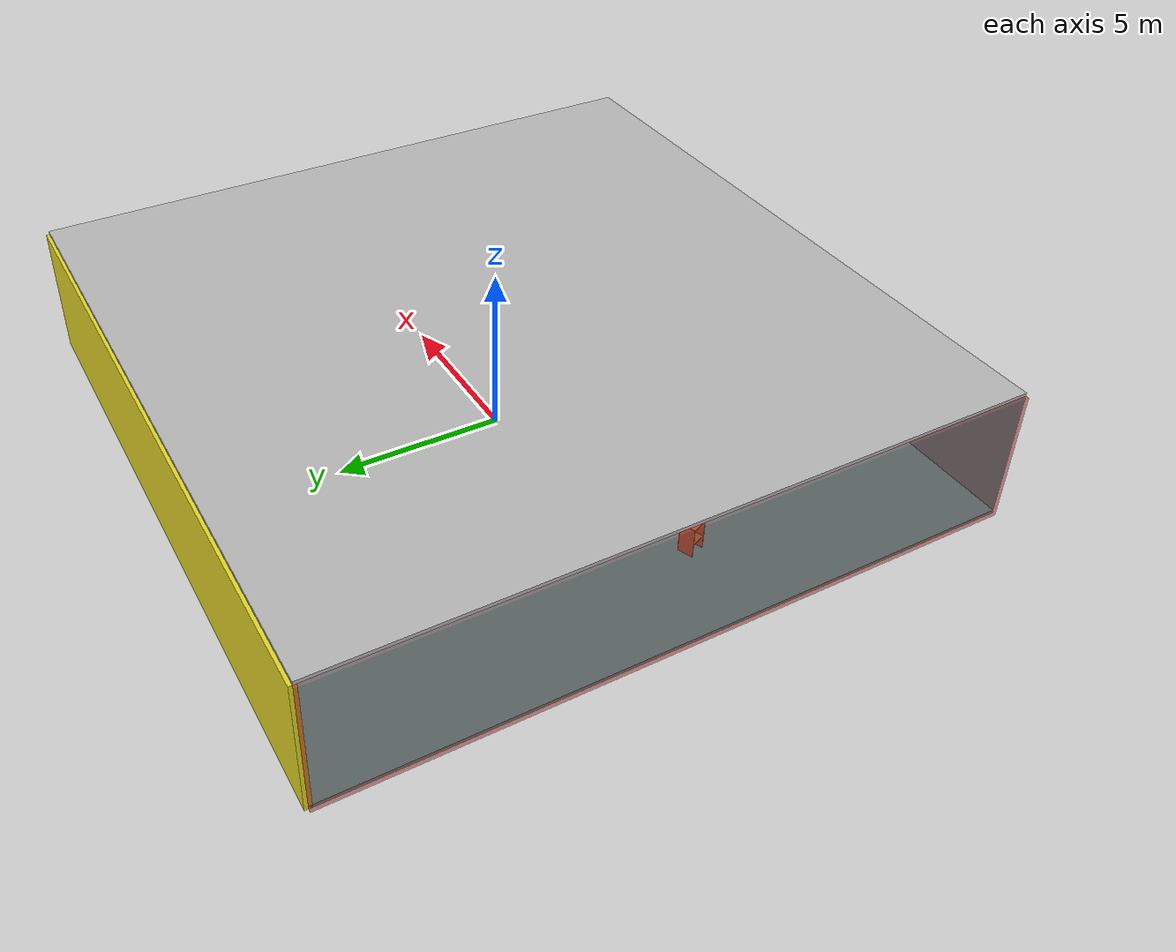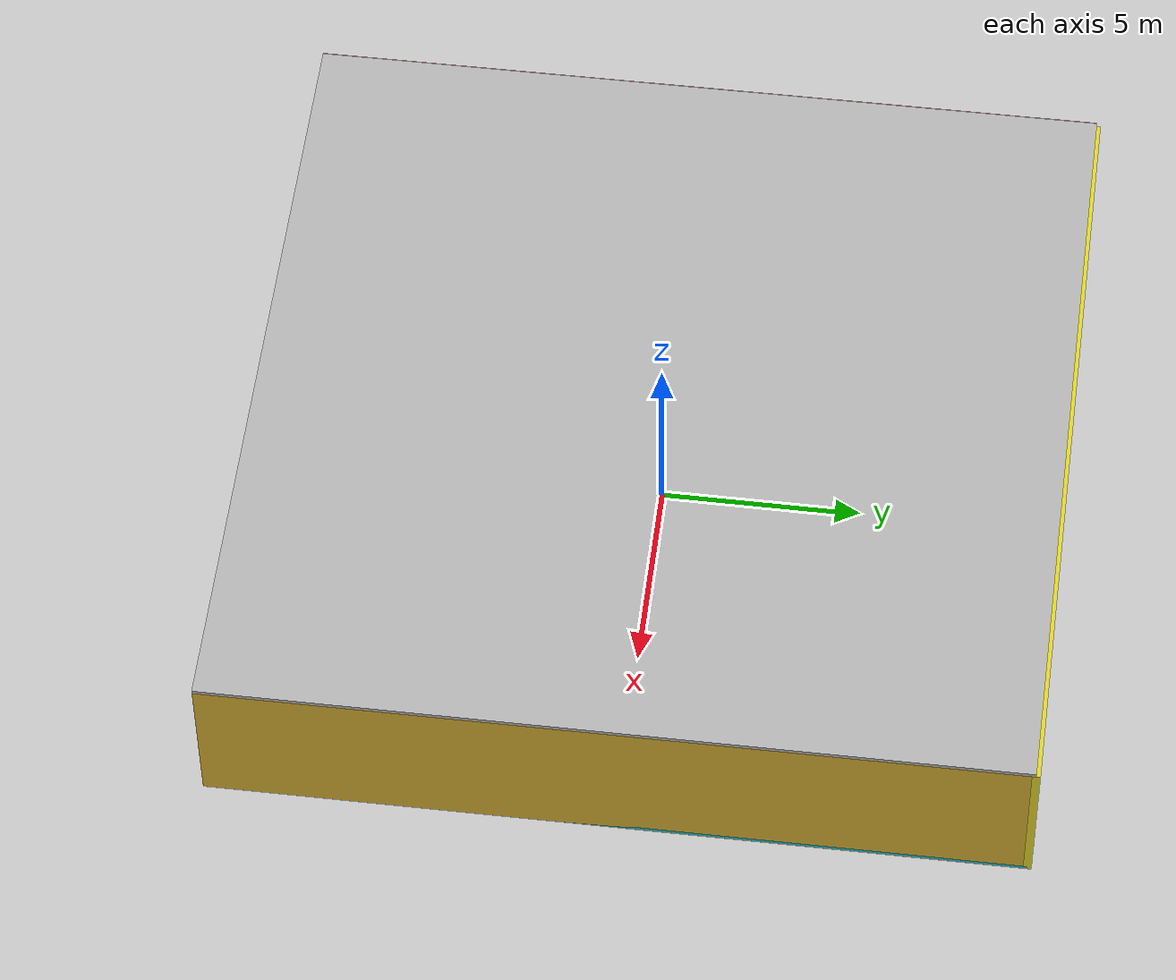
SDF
<sdf version="1.4">
 <world name="default">
  <physics type="ode">
   <max_step_size>0.001</max_step_size>
   <real_time_factor>1</real_time_factor>
   <real_time_update_rate>1000</real_time_update_rate>
   <gravity>0 0 -9.8</gravity>
  </physics>
  <scene><ambient>0.4 0.4 0.4 1</ambient><background>0.7 0.7 0.7 1</background><shadows>1</shadows></scene>
  <model name="Surrounding">
   <static>1</static>
   <link name="Ceiling">
    <collision name="Ceiling_Collision"><geometry><box><size>20 20 0.1</size></box></geometry></collision>
    <visual name="Ceiling_Visual">
     <geometry><box><size>20 20 0.1</size></box></geometry>
     <material>
      <script><uri>file://media/materials/scripts/gazebo.material</uri><name>Gazebo/CloudySky</name></script>
     </material>
    </visual>
    <pose>0 0 4.05 0 0 0</pose>
   </link>
   <link name="Wall_South">
    <collision name="Wall_South_Collision">
     <geometry><box><size>20 0 4</size></box></geometry>
     <pose>0 0 2 0 -0 0</pose>
    </collision>
    <visual name="Wall_South_Visual">
     <pose>0 0 2 0 -0 0</pose>
     <geometry><box><size>20 0 4</size></box></geometry>
     <material>
      <script><uri>file://media/materials/scripts/gazebo.material</uri><name>Gazebo/Turquoise</name></script>
     </material>
    </visual>
    <velocity_decay><linear>0</linear><angular>0</angular></velocity_decay>
    <pose>0 -10 0 0 -0 0</pose>
   </link>
   <link name="Wall_East">
    <collision name="Wall_21_Collision">
     <geometry><box><size>20 0 4</size></box></geometry>
     <pose>0 0 2 0 -0 0</pose>
    </collision>
    <visual name="Wall_21_Visual">
     <pose>0 0 2 0 -0 0</pose>
     <geometry><box><size>20 0 4</size></box></geometry>
     <material>
      <script><uri>file://media/materials/scripts/gazebo.material</uri><name>Gazebo/Gold</name></script>
     </material>
    </visual>
    <velocity_decay><linear>0</linear><angular>0</angular></velocity_decay>
    <pose>10 0 0 0 -0 1.5708</pose>
   </link>
   <link name="Wall_North">
    <collision name="Wall_22_Collision">
     <geometry><box><size>20 0.2 4</size></box></geometry>
     <pose>0 0 2 0 -0 0</pose>
    </collision>
    <visual name="Wall_22_Visual">
     <pose>0 0 2 0 -0 0</pose>
     <geometry><box><size>20 0.2 4</size></box></geometry>
     <material>
      <script><uri>file://media/materials/scripts/gazebo.material</uri><name>Gazebo/YellowGlow</name></script>
     </material>
    </visual>
    <velocity_decay><linear>0</linear><angular>0</angular></velocity_decay>
    <pose>0 10 0 0 -0 0</pose>
   </link>
   <link name="Wall_West">
    <collision name="Wall_23_Collision">
     <geometry><box><size>20 0.2 4</size></box></geometry>
     <pose>0 0 2 0 -0 0</pose>
    </collision>
    <visual name="Wall_23_Visual">
     <pose>0 0 2 0 -0 0</pose>
     <geometry><box><size>20 0.2 4</size></box></geometry>
     <material>
      <script><uri>file://media/materials/scripts/gazebo.material</uri><name>Gazebo/RedTransparent</name></script>
     </material>
    </visual>
    <velocity_decay><linear>0</linear><angular>0</angular></velocity_decay>
    <pose>-10 0 0 0 0 -1.5708</pose>
   </link>
   <link name="Ground_link">
    <collision name="collision">
     <pose>0 0 .05 0 -0 0</pose>
     <geometry><box><size>20 20 0.1</size></box></geometry>
    </collision>
    <visual name="visual">
     <pose>0 0 .05 0 -0 0</pose>
     <geometry><box><size>20 20 0.1</size></box></geometry>
     <material>
      <script>
       <uri>file://media/materials/scripts/gazebo.material</uri>
       <name>Gazebo/TurquoiseGlowOutline</name>
      </script>
     </material>
    </visual>
   </link>
   <static>1</static>
  </model>
  <spherical_coordinates>
   <surface_model>EARTH_WGS84</surface_model>
   <latitude_deg>0</latitude_deg>
   <longitude_deg>0</longitude_deg>
   <elevation>0</elevation>
   <heading_deg>0</heading_deg>
  </spherical_coordinates>
  <light name="lightball_0" type="diffuse">
   <diffuse>0.8 0.8 0.8 1</diffuse>
   <specular>0.2 0.2 0.2 1</specular>
   <attenuation>
    <range>100</range>
    <constant>0.7</constant>
    <linear>0.01</linear>
    <quadratic>0.001</quadratic>
   </attenuation>
   <direction>-0.5 0.1 -0.9</direction>
   <pose>0.608055234996 0.213501353682 3.63186859793 0 0 0</pose>
  </light>
  <light name="lightball_1" type="diffuse">
   <diffuse>0.8 0.8 0.8 1</diffuse>
   <specular>0.2 0.2 0.2 1</specular>
   <attenuation>
    <range>100</range>
    <constant>0.7</constant>
    <linear>0.01</linear>
    <quadratic>0.001</quadratic>
   </attenuation>
   <direction>-0.5 0.1 -0.9</direction>
   <pose>1.18782372521 -5.65191236101 2.96102871857 0 0 0</pose>
  </light>
  <light name="lightball_2" type="diffuse">
   <diffuse>0.8 0.8 0.8 1</diffuse>
   <specular>0.2 0.2 0.2 1</specular>
   <attenuation>
    <range>100</range>
    <constant>0.7</constant>
    <linear>0.01</linear>
    <quadratic>0.001</quadratic>
   </attenuation>
   <direction>-0.5 0.1 -0.9</direction>
   <pose>-4.76441795785 -6.41944401623 0.645766470914 0 0 0</pose>
  </light>
  <light name="lightball_3" type="diffuse">
   <diffuse>0.8 0.8 0.8 1</diffuse>
   <specular>0.2 0.2 0.2 1</specular>
   <attenuation>
    <range>100</range>
    <constant>0.7</constant>
    <linear>0.01</linear>
    <quadratic>0.001</quadratic>
   </attenuation>
   <direction>-0.5 0.1 -0.9</direction>
   <pose>5.53155049387 -0.466634884976 3.05770736162 0 0 0</pose>
  </light>
  <light name="lightball_4" type="diffuse">
   <diffuse>0.8 0.8 0.8 1</diffuse>
   <specular>0.2 0.2 0.2 1</specular>
   <attenuation>
    <range>100</range>
    <constant>0.7</constant>
    <linear>0.01</linear>
    <quadratic>0.001</quadratic>
   </attenuation>
   <direction>-0.5 0.1 -0.9</direction>
   <pose>-7.08322528234 -4.39845423485 1.8326197551 0 0 0</pose>
  </light>
  <light name="lightball_5" type="diffuse">
   <diffuse>0.8 0.8 0.8 1</diffuse>
   <specular>0.2 0.2 0.2 1</specular>
   <attenuation>
    <range>100</range>
    <constant>0.7</constant>
    <linear>0.01</linear>
    <quadratic>0.001</quadratic>
   </attenuation>
   <direction>-0.5 0.1 -0.9</direction>
   <pose>-9.04029881606 -8.50146425887 2.82894921892 0 0 0</pose>
  </light>
  <light name="lightball_6" type="diffuse">
   <diffuse>0.8 0.8 0.8 1</diffuse>
   <specular>0.2 0.2 0.2 1</specular>
   <attenuation>
    <range>100</range>
    <constant>0.7</constant>
    <linear>0.01</linear>
    <quadratic>0.001</quadratic>
   </attenuation>
   <direction>-0.5 0.1 -0.9</direction>
   <pose>-2.98833402889 -1.48262251776 1.78708495648 0 0 0</pose>
  </light>
  <include><uri>model://cabinet</uri><pose>-7.31692037567 -1.86946942874 0 0 0 0.373375310421</pose></include>
  <include><uri>model://table</uri><pose>-4.06174678382 5.17905425235 0 0 0 0.140232496254</pose></include>
  <include>
   <uri>model://robocup_3Dsim_goal</uri>
   <pose>4.47073934736 -6.88494019072 0 0 0 0.74923110192</pose>
  </include>
  <include><uri>model://cabinet</uri><pose>4.89599795375 -1.70305687998 0 0 0 1.36985167282</pose></include>
 </world>
</sdf>

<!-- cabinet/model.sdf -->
<sdf version="1.5">
  <model name="cabinet">
    <static>true</static>
    <link name="cabinet_bottom_plate">
      <inertial>
        <pose>0 0 -1 0 0 0</pose>
        <inertia>
          <ixx>2.050000</ixx>
          <ixy>0</ixy>
          <ixz>0</ixz>
          <iyy>2.050000</iyy>
          <iyz>0</iyz>
          <izz>2.050000</izz>
        </inertia>
        <mass>25.000000</mass>
      </inertial>
      <collision name="cabinet_bottom_plate_geom">
        <pose>0 0 0.010000 0 0 0</pose>
        <geometry>
          <box>
            <size>0.450000 0.450000 0.020000</size>
          </box>
        </geometry>
      </collision>
      <visual name="cabinet_bottom_plate_geom_visual">
        <pose>0 0 0.010000 0 0 0</pose>
        <geometry>
          <box>
            <size>0.450000 0.450000 0.020000</size>
          </box>
        </geometry>
        <material>
          <script>
            <uri>model://media/materials/scripts/gazebo.material</uri>
            <name>Gazebo/Wood</name>
          </script>
        </material>
      </visual>
      <collision name="cabinet_bottom_plate_geom_cabinet_back_plate">
        <pose>0.235000 0 0.510000 0 0 0</pose>
        <geometry>
          <box>
            <size>0.020000 0.450000 1.020000</size>
          </box>
        </geometry>
      </collision>
      <visual name="cabinet_bottom_plate_geom_cabinet_back_plate_visual">
        <pose>0.235000 0 0.510000 0 0 0</pose>
        <geometry>
          <box>
            <size>0.020000 0.450000 1.020000</size>
          </box>
        </geometry>
        <material>
          <script>
            <uri>model://media/materials/scripts/gazebo.material</uri>
            <name>Gazebo/Wood</name>
          </script>
        </material>
      </visual>
      <collision name="cabinet_bottom_plate_geom_cabinet_left_plate">
        <pose>0 0.235000 0.510000 0 0 0</pose>
        <geometry>
          <box>
            <size>0.450000 0.020000 1.020000</size>
          </box>
        </geometry>
      </collision>
      <visual name="cabinet_bottom_plate_geom_cabinet_left_plate_visual">
        <pose>0 0.235000 0.510000 0 0 0</pose>
        <geometry>
          <box>
            <size>0.450000 0.020000 1.020000</size>
          </box>
        </geometry>
        <material>
          <script>
            <uri>model://media/materials/scripts/gazebo.material</uri>
            <name>Gazebo/Wood</name>
          </script>
        </material>
      </visual>
      <collision name="cabinet_bottom_plate_geom_cabinet_middle_plate">
        <pose>0 0 0.510000 0 0 0</pose>
        <geometry>
          <box>
            <size>0.450000 0.450000 0.020000</size>
          </box>
        </geometry>
      </collision>
      <visual name="cabinet_bottom_plate_geom_cabinet_middle_plate_visual">
        <pose>0 0 0.510000 0 0 0</pose>
        <geometry>
          <box>
            <size>0.450000 0.450000 0.020000</size>
          </box>
        </geometry>
        <material>
          <script>
            <uri>model://media/materials/scripts/gazebo.material</uri>
            <name>Gazebo/Wood</name>
          </script>
        </material>
      </visual>
      <collision name="cabinet_bottom_plate_geom_cabinet_right_plate">
        <pose>0 -0.235000 0.510000 0 0 0</pose>
        <geometry>
          <box>
            <size>0.450000 0.020000 1.020000</size>
          </box>
        </geometry>
      </collision>
      <visual name="cabinet_bottom_plate_geom_cabinet_right_plate_visual">
        <pose>0 -0.235000 0.510000 0 0 0</pose>
        <geometry>
          <box>
            <size>0.450000 0.020000 1.020000</size>
          </box>
        </geometry>
        <material>
          <script>
            <uri>model://media/materials/scripts/gazebo.material</uri>
            <name>Gazebo/Wood</name>
          </script>
        </material>
      </visual>
      <collision name="cabinet_bottom_plate_geom_cabinet_top_plate">
        <pose>0 0 1.010000 0 0 0</pose>
        <geometry>
          <box>
            <size>0.450000 0.450000 0.020000</size>
          </box>
        </geometry>
      </collision>
      <visual name="cabinet_bottom_plate_geom_cabinet_top_plate_visual">
        <pose>0 0 1.010000 0 0 0</pose>
        <geometry>
          <box>
            <size>0.450000 0.450000 0.020000</size>
          </box>
        </geometry>
        <material>
          <script>
            <uri>model://media/materials/scripts/gazebo.material</uri>
            <name>Gazebo/Wood</name>
          </script>
        </material>
      </visual>
    </link>
  </model>
</sdf>

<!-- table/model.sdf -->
<sdf version="1.5">
  <model name="table">
    <static>true</static>
    <link name="link">
      <collision name="surface">
        <pose>0 0 1.0 0 0 0</pose>
        <geometry>
          <box>
            <size>1.5 0.8 0.03</size>
          </box>
        </geometry>
        <surface>
          <friction>
            <ode>
              <mu>0.6</mu>
              <mu2>0.6</mu2>
            </ode>
          </friction>
        </surface>
      </collision>
      <visual name="visual1">
        <pose>0 0 1.0 0 0 0</pose>
        <geometry>
          <box>
            <size>1.5 0.8 0.03</size>
          </box>
        </geometry>
        <material>
          <script>
            <uri>model://media/materials/scripts/gazebo.material</uri>
            <name>Gazebo/Wood</name>
          </script>
        </material>
      </visual>
      <collision name="front_left_leg">
        <pose>0.68 0.38 0.5 0 0 0</pose>
        <geometry>
          <cylinder>
            <radius>0.02</radius>
            <length>1.0</length>
          </cylinder>
        </geometry>
      </collision>
      <visual name="front_left_leg">
        <pose>0.68 0.38 0.5 0 0 0</pose>
        <geometry>
          <cylinder>
            <radius>0.02</radius>
            <length>1.0</length>
          </cylinder>
        </geometry>
        <material>
          <script>
            <uri>model://media/materials/scripts/gazebo.material</uri>
            <name>Gazebo/Grey</name>
          </script>
        </material>
      </visual>
      <collision name="front_right_leg">
        <pose>0.68 -0.38 0.5 0 0 0</pose>
        <geometry>
          <cylinder>
            <radius>0.02</radius>
            <length>1.0</length>
          </cylinder>
        </geometry>
      </collision>
      <visual name="front_right_leg">
        <pose>0.68 -0.38 0.5 0 0 0</pose>
        <geometry>
          <cylinder>
            <radius>0.02</radius>
            <length>1.0</length>
          </cylinder>
        </geometry>
        <material>
          <script>
            <uri>model://media/materials/scripts/gazebo.material</uri>
            <name>Gazebo/Grey</name>
          </script>
        </material>
      </visual>
      <collision name="back_right_leg">
        <pose>-0.68 -0.38 0.5 0 0 0</pose>
        <geometry>
          <cylinder>
            <radius>0.02</radius>
            <length>1.0</length>
          </cylinder>
        </geometry>
      </collision>
      <visual name="back_right_leg">
        <pose>-0.68 -0.38 0.5 0 0 0</pose>
        <geometry>
          <cylinder>
            <radius>0.02</radius>
            <length>1.0</length>
          </cylinder>
        </geometry>
        <material>
          <script>
            <uri>model://media/materials/scripts/gazebo.material</uri>
            <name>Gazebo/Grey</name>
          </script>
        </material>
      </visual>
      <collision name="back_left_leg">
        <pose>-0.68 0.38 0.5 0 0 0</pose>
        <geometry>
          <cylinder>
            <radius>0.02</radius>
            <length>1.0</length>
          </cylinder>
        </geometry>
      </collision>
      <visual name="back_left_leg">
        <pose>-0.68 0.38 0.5 0 0 0</pose>
        <geometry>
          <cylinder>
            <radius>0.02</radius>
            <length>1.0</length>
          </cylinder>
        </geometry>
        <material>
          <script>
            <uri>model://media/materials/scripts/gazebo.material</uri>
            <name>Gazebo/Grey</name>
          </script>
        </material>
      </visual>
    </link>
  </model>
</sdf>

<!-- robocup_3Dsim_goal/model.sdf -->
<sdf version="1.5">
  <model name="robocup_3d_goal">
    <static>true</static>
    <link name="left_post">
      <pose>0 1.05 0.45 0 0 0</pose>
      <collision name="collision">
        <geometry>
          <cylinder>
            <radius>0.05</radius>
            <length>0.9</length>
          </cylinder>
        </geometry>
      </collision>
      <visual name="visual">
        <geometry>
          <cylinder>
            <radius>0.05</radius>
            <length>0.9</length>
          </cylinder>
        </geometry>
        <material>
          <script>
            <uri>file://media/materials/scripts/gazebo.material</uri>
            <name>Gazebo/ZincYellow</name>
          </script>
        </material>
      </visual>
    </link>
    <link name="left_support_horiz_lower">
      <pose>0.30 1.05 0.01 0 0 0</pose>
      <collision name="collision">
        <geometry>
          <box>
            <size>0.50 0.02 0.02</size>
          </box>
        </geometry>
      </collision>
      <visual name="visual">
        <geometry>
          <box>
            <size>0.50 0.02 0.02</size>
          </box>
        </geometry>
        <material>
          <script>
            <uri>file://media/materials/scripts/gazebo.material</uri>
            <name>Gazebo/White</name>
          </script>
        </material>
      </visual>
    </link>
    <link name="left_support_horiz_upper">
      <pose>0.30 1.05 0.79 0 0 0</pose>
      <collision name="collision">
        <geometry>
          <box>
            <size>0.50 0.02 0.02</size>
          </box>
        </geometry>
      </collision>
      <visual name="visual">
        <geometry>
          <box>
            <size>0.50 0.02 0.02</size>
          </box>
        </geometry>
        <material>
          <script>
            <uri>file://media/materials/scripts/gazebo.material</uri>
            <name>Gazebo/White</name>
          </script>
        </material>
      </visual>
    </link>
    <link name="left_support_vertical">
      <pose>0.56 1.05 0.4 0 1.5708 0</pose>
      <collision name="collision">
        <geometry>
          <box>
            <size>0.80 0.02 0.02</size>
          </box>
        </geometry>
      </collision>
      <visual name="visual">
        <geometry>
          <box>
            <size>0.80 0.02 0.02</size>
          </box>
        </geometry>
        <material>
          <script>
            <uri>file://media/materials/scripts/gazebo.material</uri>
            <name>Gazebo/White</name>
          </script>
        </material>
      </visual>
    </link>
    <link name="right_support_horiz_lower">
      <pose>0.30 -1.05 0.01 0 0 0</pose>
      <collision name="collision">
        <geometry>
          <box>
            <size>0.50 0.02 0.02</size>
          </box>
        </geometry>
      </collision>
      <visual name="visual">
        <geometry>
          <box>
            <size>0.50 0.02 0.02</size>
          </box>
        </geometry>
        <material>
          <script>
            <uri>file://media/materials/scripts/gazebo.material</uri>
            <name>Gazebo/White</name>
          </script>
        </material>
      </visual>
    </link>
    <link name="right_support_horiz_upper">
      <pose>0.30 -1.05 0.79 0 0 0</pose>
      <collision name="collision">
        <geometry>
          <box>
            <size>0.50 0.02 0.02</size>
          </box>
        </geometry>
      </collision>
      <visual name="visual">
        <geometry>
          <box>
            <size>0.50 0.02 0.02</size>
          </box>
        </geometry>
        <material>
          <script>
            <uri>file://media/materials/scripts/gazebo.material</uri>
            <name>Gazebo/White</name>
          </script>
        </material>
      </visual>
    </link>
    <link name="right_support_vertical">
      <pose>0.56 -1.05 0.4 0 1.5708 0</pose>
      <collision name="collision">
        <geometry>
          <box>
            <size>0.80 0.02 0.02</size>
          </box>
        </geometry>
      </collision>
      <visual name="visual">
        <geometry>
          <box>
            <size>0.80 0.02 0.02</size>
          </box>
        </geometry>
        <material>
          <script>
            <uri>file://media/materials/scripts/gazebo.material</uri>
            <name>Gazebo/White</name>
          </script>
        </material>
      </visual>
    </link>
    <link name="center_support_horiz_lower">
      <pose>0.56 0 0.01 0 1.5708 0</pose>
      <collision name="collision">
        <geometry>
          <box>
            <size>0.02 2.08 0.02</size>
          </box>
        </geometry>
      </collision>
      <visual name="visual">
        <geometry>
          <box>
            <size>0.02 2.08 0.02</size>
          </box>
        </geometry>
        <material>
          <script>
            <uri>file://media/materials/scripts/gazebo.material</uri>
            <name>Gazebo/White</name>
          </script>
        </material>
      </visual>
    </link>
    <link name="center_support_horiz_upper">
      <pose>0.56 0 0.79 0 1.5708 0</pose>
      <collision name="collision">
        <geometry>
          <box>
            <size>0.02 2.08 0.02</size>
          </box>
        </geometry>
      </collision>
      <visual name="visual">
        <geometry>
          <box>
            <size>0.02 2.08 0.02</size>
          </box>
        </geometry>
        <material>
          <script>
            <uri>file://media/materials/scripts/gazebo.material</uri>
            <name>Gazebo/White</name>
          </script>
        </material>
      </visual>
    </link>
    <link name="right_post">
      <pose>0 -1.05 0.45 0 0 0</pose>
      <collision name="collision">
        <geometry>
          <cylinder>
            <radius>0.05</radius>
            <length>0.9</length>
          </cylinder>
        </geometry>
      </collision>
      <visual name="visual">
        <geometry>
          <cylinder>
            <radius>0.05</radius>
            <length>0.9</length>
          </cylinder>
        </geometry>
        <material>
          <script>
            <uri>file://media/materials/scripts/gazebo.material</uri>
            <name>Gazebo/ZincYellow</name>
          </script>
        </material>
      </visual>
    </link>
    <link name="crossbar">
      <pose>0 0 0.85 1.57 1.57 0</pose>
      <collision name="collision">
        <geometry>
          <cylinder>
            <radius>0.05</radius>
            <length>2.0</length>
          </cylinder>
        </geometry>
      </collision>
      <visual name="visual">
        <geometry>
          <cylinder>
            <radius>0.05</radius>
            <length>2.0</length>
          </cylinder>
        </geometry>
        <material>
          <script>
            <uri>file://media/materials/scripts/gazebo.material</uri>
            <name>Gazebo/ZincYellow</name>
          </script>
        </material>
      </visual>
    </link>
    <link name="center_net">
      <pose>0.56 0 0.40 0 0 0</pose>
      <collision name="collision">
        <geometry>
          <box>
            <size>0.01 2.1 0.80</size>
          </box>
        </geometry>
      </collision>
      <visual name="visual">
        <geometry>
          <box>
            <size>0.01 2.1 0.80</size>
          </box>
        </geometry>
        <material>
          <script>
            <uri>model://../model_source/models/robocup09_spl_field/materials/scripts/</uri>
            <uri>model://../model_source/models/robocup09_spl_field/materials/textures/</uri>
            <name>RoboCup/Net</name>
          </script>
        </material>
      </visual>
    </link>
    <link name="left_net">
      <pose>0.30 1.05 0.40 0 0 0</pose>
      <collision name="collision">
        <geometry>
          <box>
            <size>0.50 0.01 0.76</size>
          </box>
        </geometry>
      </collision>
      <visual name="visual">
        <geometry>
          <box>
            <size>0.50 0.01 0.76</size>
          </box>
        </geometry>
        <material>
          <script>
            <uri>model://../model_source/models/robocup09_spl_field/materials/scripts/</uri>
            <uri>model://../model_source/models/robocup09_spl_field/materials/textures/</uri>
            <name>RoboCup/Net</name>
          </script>
        </material>
      </visual>
    </link>
    <link name="right_net">
      <pose>0.30 -1.05 0.40 0 0 0</pose>
      <collision name="collision">
        <geometry>
          <box>
            <size>0.50 0.01 0.76</size>
          </box>
        </geometry>
      </collision>
      <visual name="visual">
        <geometry>
          <box>
            <size>0.50 0.01 0.76</size>
          </box>
        </geometry>
        <material>
          <script>
            <uri>model://../model_source/models/robocup09_spl_field/materials/scripts/</uri>
            <uri>model://../model_source/models/robocup09_spl_field/materials/textures/</uri>
            <name>RoboCup/Net</name>
          </script>
        </material>
      </visual>
    </link>
  </model>
</sdf>
